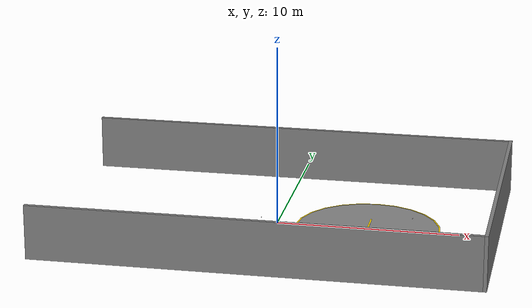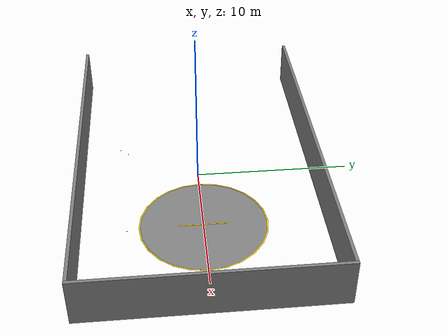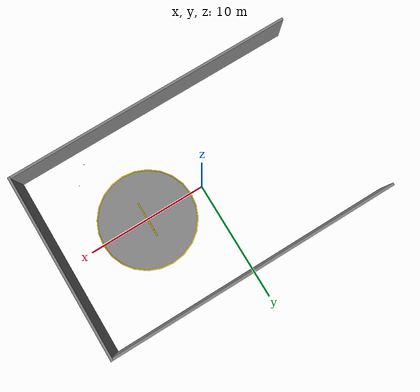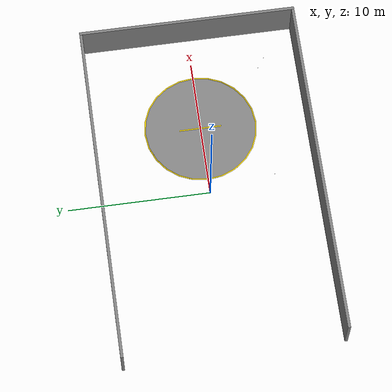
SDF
<sdf version="1.9">
 <world name="drone_garage_pigeon_3d">
  <model name="ground_plane">
   <static>true</static>
   <link name="link">
    <collision name="collision">
     <geometry><plane><normal>0 0 1</normal><size>24.0 15.0</size></plane></geometry>
    </collision>
   </link>
  </model>
  <model name="pad_2_ring">
   <static>true</static>
   <pose>5 0 0.003 0 0 0</pose>
   <link name="link">
    <visual name="v">
     <geometry><cylinder><radius>4.0</radius><length>0.002</length></cylinder></geometry>
     <material><ambient>1.0 0.85 0.0 1</ambient><diffuse>1.0 0.85 0.0 1</diffuse></material>
    </visual>
   </link>
  </model>
  <model name="pad_2_fill">
   <static>true</static>
   <pose>5 0 0.004 0 0 0</pose>
   <link name="link">
    <visual name="v">
     <geometry><cylinder><radius>3.92</radius><length>0.002</length></cylinder></geometry>
     <material><ambient>0.52 0.52 0.52 1</ambient><diffuse>0.52 0.52 0.52 1</diffuse></material>
    </visual>
   </link>
  </model>
  <model name="pad_2_cross_h">
   <static>true</static>
   <pose>5 0 0.006 0 0 0</pose>
   <link name="link">
    <visual name="v">
     <geometry><box><size>3.0 0.08 0.002</size></box></geometry>
     <material><ambient>1.0 0.85 0.0 1</ambient><diffuse>1.0 0.85 0.0 1</diffuse></material>
    </visual>
   </link>
  </model>
  <model name="pad_2_cross_v">
   <static>true</static>
   <pose>5 0 0.006 0 0 0</pose>
   <link name="link">
    <visual name="v">
     <geometry><box><size>0.08 3.0 0.002</size></box></geometry>
     <material><ambient>1.0 0.85 0.0 1</ambient><diffuse>1.0 0.85 0.0 1</diffuse></material>
    </visual>
   </link>
  </model>
  <model name="wall_north">
   <static>true</static>
   <pose>12.1 0 1.5 0 0 0</pose>
   <link name="link">
    <collision name="c"><geometry><box><size>0.2 15.4 3.0</size></box></geometry></collision>
    <visual name="v">
     <geometry><box><size>0.2 15.4 3.0</size></box></geometry>
     <material><ambient>0.50 0.50 0.50 1</ambient><diffuse>0.50 0.50 0.50 1</diffuse></material>
    </visual>
   </link>
  </model>
  <model name="wall_east">
   <static>true</static>
   <pose>0 7.6 1.5 0 0 0</pose>
   <link name="link">
    <collision name="c"><geometry><box><size>24.0 0.2 3.0</size></box></geometry></collision>
    <visual name="v">
     <geometry><box><size>24.0 0.2 3.0</size></box></geometry>
     <material><ambient>0.50 0.50 0.50 1</ambient><diffuse>0.50 0.50 0.50 1</diffuse></material>
    </visual>
   </link>
  </model>
  <model name="wall_west">
   <static>true</static>
   <pose>0 -7.6 1.5 0 0 0</pose>
   <link name="link">
    <collision name="c"><geometry><box><size>24.0 0.2 3.0</size></box></geometry></collision>
    <visual name="v">
     <geometry><box><size>24.0 0.2 3.0</size></box></geometry>
     <material><ambient>0.50 0.50 0.50 1</ambient><diffuse>0.50 0.50 0.50 1</diffuse></material>
    </visual>
   </link>
  </model>
  <include><uri>model://pigeon_3d</uri><name>pigeon_1</name><pose>8 -4.5 2.5 0 0 0</pose></include>
  <include>
   <uri>model://mono_cam_hd</uri>
   <name>fixed_cam</name>
   <pose>0 -4.5 2 0 0 0</pose>
   <static>true</static>
  </include>
  <include>
   <uri>model://mono_cam_hd</uri>
   <name>center_cam</name>
   <pose>6.5 -4.5 7 0 1.5708 0</pose>
   <static>true</static>
  </include>
 </world>
</sdf>
